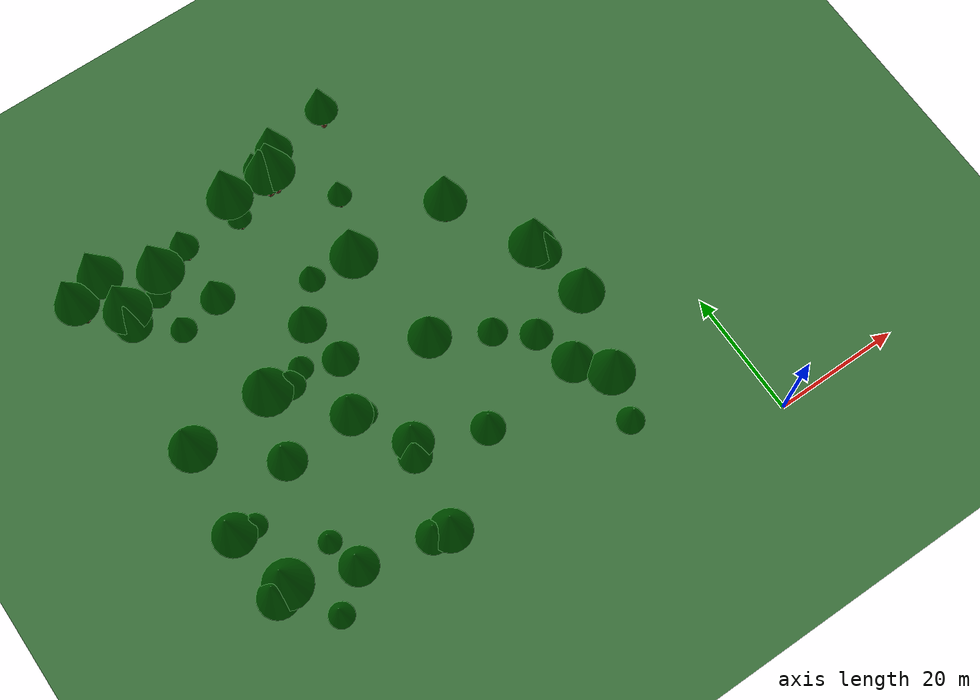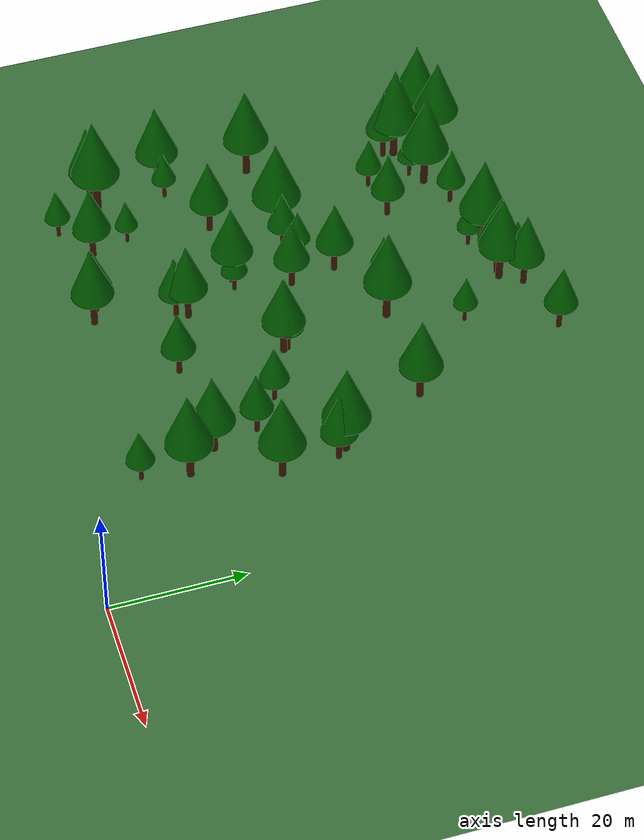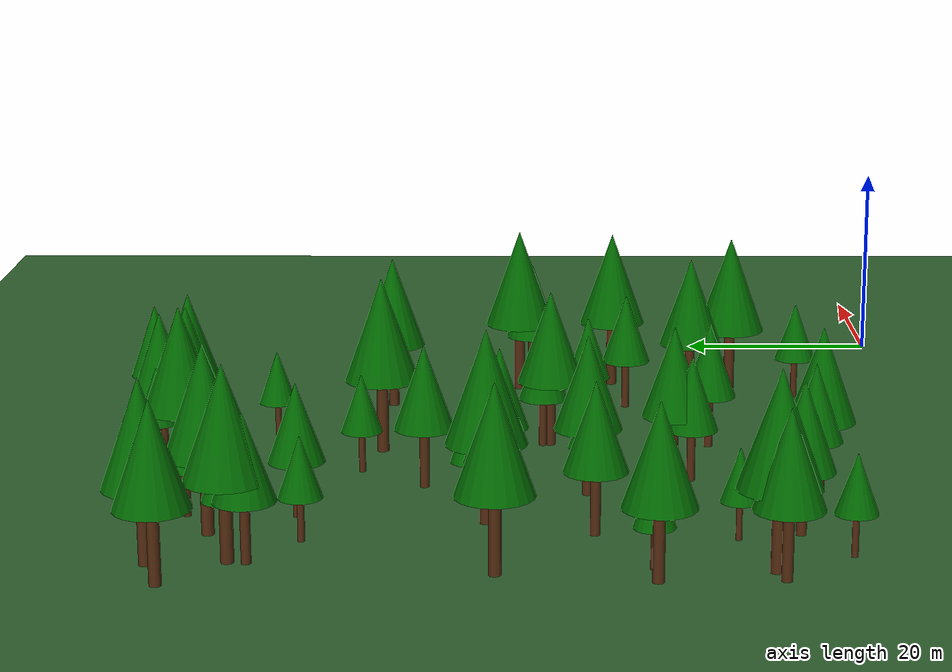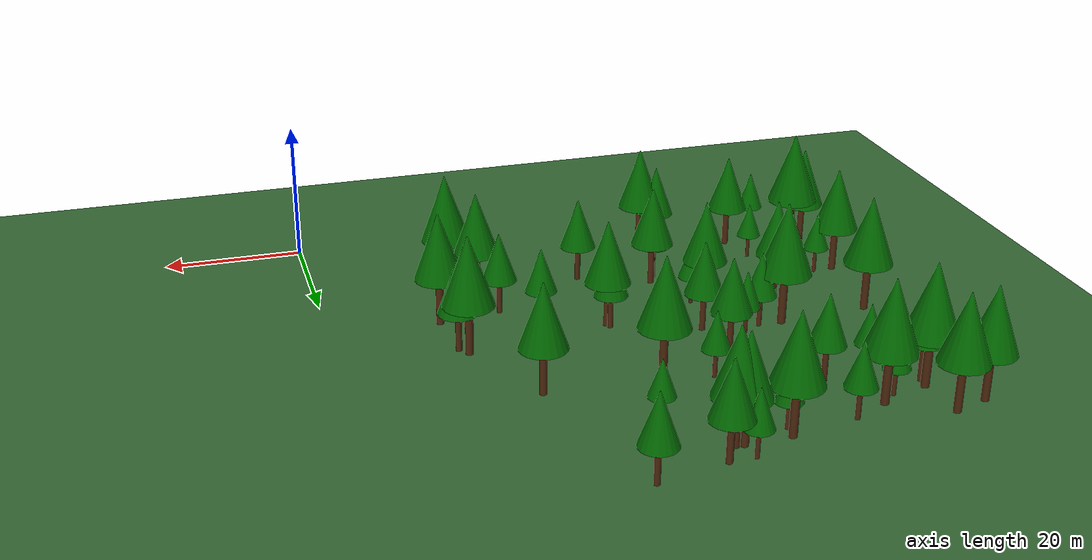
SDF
<sdf version="1.9">
 <world name="Forest_world">
  <model name="ground_plane">
   <static>true</static>
   <link name="link">
    <collision name="collision">
     <geometry><plane><normal>0 0 1</normal><size>500 500</size></plane></geometry>
    </collision>
    <visual name="visual">
     <geometry><plane><normal>0 0 1</normal><size>500 500</size></plane></geometry>
     <material><ambient>0.2 0.4 0.2 1</ambient><diffuse>0.2 0.4 0.2 1</diffuse></material>
    </visual>
   </link>
  </model>
  <model name="tree_8">
   <static>true</static>
   <pose>-43.70 74.55 0 0 0 0</pose>
   <link name="link">
    <collision name="trunk_col">
     <pose>0 0 1.99 0 0 0</pose>
     <geometry><cylinder><radius>0.32</radius><length>3.98</length></cylinder></geometry>
    </collision>
    <visual name="trunk_vis">
     <pose>0 0 1.99 0 0 0</pose>
     <geometry><cylinder><radius>0.32</radius><length>3.98</length></cylinder></geometry>
     <material><ambient>0.3 0.15 0.05 1</ambient><diffuse>0.3 0.15 0.05 1</diffuse></material>
    </visual>
    <collision name="leaves_col">
     <pose>0 0 6.77 0 0 0</pose>
     <geometry><cone><radius>1.99</radius><length>5.57</length></cone></geometry>
    </collision>
    <visual name="leaves_vis">
     <pose>0 0 6.77 0 0 0</pose>
     <geometry><cone><radius>1.99</radius><length>5.57</length></cone></geometry>
     <material><ambient>0.0 0.4 0.0 1</ambient><diffuse>0.0 0.4 0.0 1</diffuse></material>
    </visual>
   </link>
  </model>
  <model name="tree_16">
   <static>true</static>
   <pose>-66.06 58.57 0 0 0 0</pose>
   <link name="link">
    <collision name="trunk_col">
     <pose>0 0 2.02 0 0 0</pose>
     <geometry><cylinder><radius>0.32</radius><length>4.04</length></cylinder></geometry>
    </collision>
    <visual name="trunk_vis">
     <pose>0 0 2.02 0 0 0</pose>
     <geometry><cylinder><radius>0.32</radius><length>4.04</length></cylinder></geometry>
     <material><ambient>0.3 0.15 0.05 1</ambient><diffuse>0.3 0.15 0.05 1</diffuse></material>
    </visual>
    <collision name="leaves_col">
     <pose>0 0 6.87 0 0 0</pose>
     <geometry><cone><radius>2.02</radius><length>5.66</length></cone></geometry>
    </collision>
    <visual name="leaves_vis">
     <pose>0 0 6.87 0 0 0</pose>
     <geometry><cone><radius>2.02</radius><length>5.66</length></cone></geometry>
     <material><ambient>0.0 0.4 0.0 1</ambient><diffuse>0.0 0.4 0.0 1</diffuse></material>
    </visual>
   </link>
  </model>
  <model name="tree_27">
   <static>true</static>
   <pose>-42.20 71.46 0 0 0 0</pose>
   <link name="link">
    <collision name="trunk_col">
     <pose>0 0 3.43 0 0 0</pose>
     <geometry><cylinder><radius>0.55</radius><length>6.86</length></cylinder></geometry>
    </collision>
    <visual name="trunk_vis">
     <pose>0 0 3.43 0 0 0</pose>
     <geometry><cylinder><radius>0.55</radius><length>6.86</length></cylinder></geometry>
     <material><ambient>0.3 0.15 0.05 1</ambient><diffuse>0.3 0.15 0.05 1</diffuse></material>
    </visual>
    <collision name="leaves_col">
     <pose>0 0 11.65 0 0 0</pose>
     <geometry><cone><radius>3.43</radius><length>9.60</length></cone></geometry>
    </collision>
    <visual name="leaves_vis">
     <pose>0 0 11.65 0 0 0</pose>
     <geometry><cone><radius>3.43</radius><length>9.60</length></cone></geometry>
     <material><ambient>0.0 0.4 0.0 1</ambient><diffuse>0.0 0.4 0.0 1</diffuse></material>
    </visual>
   </link>
  </model>
  <model name="tree_30">
   <static>true</static>
   <pose>-73.63 17.61 0 0 0 0</pose>
   <link name="link">
    <collision name="trunk_col">
     <pose>0 0 3.73 0 0 0</pose>
     <geometry><cylinder><radius>0.60</radius><length>7.45</length></cylinder></geometry>
    </collision>
    <visual name="trunk_vis">
     <pose>0 0 3.73 0 0 0</pose>
     <geometry><cylinder><radius>0.60</radius><length>7.45</length></cylinder></geometry>
     <material><ambient>0.3 0.15 0.05 1</ambient><diffuse>0.3 0.15 0.05 1</diffuse></material>
    </visual>
    <collision name="leaves_col">
     <pose>0 0 12.67 0 0 0</pose>
     <geometry><cone><radius>3.73</radius><length>10.44</length></cone></geometry>
    </collision>
    <visual name="leaves_vis">
     <pose>0 0 12.67 0 0 0</pose>
     <geometry><cone><radius>3.73</radius><length>10.44</length></cone></geometry>
     <material><ambient>0.0 0.4 0.0 1</ambient><diffuse>0.0 0.4 0.0 1</diffuse></material>
    </visual>
   </link>
  </model>
  <model name="tree_31">
   <static>true</static>
   <pose>-23.72 52.81 0 0 0 0</pose>
   <link name="link">
    <collision name="trunk_col">
     <pose>0 0 3.29 0 0 0</pose>
     <geometry><cylinder><radius>0.53</radius><length>6.57</length></cylinder></geometry>
    </collision>
    <visual name="trunk_vis">
     <pose>0 0 3.29 0 0 0</pose>
     <geometry><cylinder><radius>0.53</radius><length>6.57</length></cylinder></geometry>
     <material><ambient>0.3 0.15 0.05 1</ambient><diffuse>0.3 0.15 0.05 1</diffuse></material>
    </visual>
    <collision name="leaves_col">
     <pose>0 0 11.18 0 0 0</pose>
     <geometry><cone><radius>3.29</radius><length>9.20</length></cone></geometry>
    </collision>
    <visual name="leaves_vis">
     <pose>0 0 11.18 0 0 0</pose>
     <geometry><cone><radius>3.29</radius><length>9.20</length></cone></geometry>
     <material><ambient>0.0 0.4 0.0 1</ambient><diffuse>0.0 0.4 0.0 1</diffuse></material>
    </visual>
   </link>
  </model>
  <model name="tree_35">
   <static>true</static>
   <pose>-64.30 67.00 0 0 0 0</pose>
   <link name="link">
    <collision name="trunk_col">
     <pose>0 0 3.63 0 0 0</pose>
     <geometry><cylinder><radius>0.58</radius><length>7.26</length></cylinder></geometry>
    </collision>
    <visual name="trunk_vis">
     <pose>0 0 3.63 0 0 0</pose>
     <geometry><cylinder><radius>0.58</radius><length>7.26</length></cylinder></geometry>
     <material><ambient>0.3 0.15 0.05 1</ambient><diffuse>0.3 0.15 0.05 1</diffuse></material>
    </visual>
    <collision name="leaves_col">
     <pose>0 0 12.34 0 0 0</pose>
     <geometry><cone><radius>3.63</radius><length>10.17</length></cone></geometry>
    </collision>
    <visual name="leaves_vis">
     <pose>0 0 12.34 0 0 0</pose>
     <geometry><cone><radius>3.63</radius><length>10.17</length></cone></geometry>
     <material><ambient>0.0 0.4 0.0 1</ambient><diffuse>0.0 0.4 0.0 1</diffuse></material>
    </visual>
   </link>
  </model>
  <model name="tree_36">
   <static>true</static>
   <pose>-19.27 17.14 0 0 0 0</pose>
   <link name="link">
    <collision name="trunk_col">
     <pose>0 0 3.53 0 0 0</pose>
     <geometry><cylinder><radius>0.56</radius><length>7.05</length></cylinder></geometry>
    </collision>
    <visual name="trunk_vis">
     <pose>0 0 3.53 0 0 0</pose>
     <geometry><cylinder><radius>0.56</radius><length>7.05</length></cylinder></geometry>
     <material><ambient>0.3 0.15 0.05 1</ambient><diffuse>0.3 0.15 0.05 1</diffuse></material>
    </visual>
    <collision name="leaves_col">
     <pose>0 0 11.99 0 0 0</pose>
     <geometry><cone><radius>3.53</radius><length>9.87</length></cone></geometry>
    </collision>
    <visual name="leaves_vis">
     <pose>0 0 11.99 0 0 0</pose>
     <geometry><cone><radius>3.53</radius><length>9.87</length></cone></geometry>
     <material><ambient>0.0 0.4 0.0 1</ambient><diffuse>0.0 0.4 0.0 1</diffuse></material>
    </visual>
   </link>
  </model>
  <model name="tree_49">
   <static>true</static>
   <pose>-51.44 32.93 0 0 0 0</pose>
   <link name="link">
    <collision name="trunk_col">
     <pose>0 0 2.03 0 0 0</pose>
     <geometry><cylinder><radius>0.32</radius><length>4.06</length></cylinder></geometry>
    </collision>
    <visual name="trunk_vis">
     <pose>0 0 2.03 0 0 0</pose>
     <geometry><cylinder><radius>0.32</radius><length>4.06</length></cylinder></geometry>
     <material><ambient>0.3 0.15 0.05 1</ambient><diffuse>0.3 0.15 0.05 1</diffuse></material>
    </visual>
    <collision name="leaves_col">
     <pose>0 0 6.90 0 0 0</pose>
     <geometry><cone><radius>2.03</radius><length>5.69</length></cone></geometry>
    </collision>
    <visual name="leaves_vis">
     <pose>0 0 6.90 0 0 0</pose>
     <geometry><cone><radius>2.03</radius><length>5.69</length></cone></geometry>
     <material><ambient>0.0 0.4 0.0 1</ambient><diffuse>0.0 0.4 0.0 1</diffuse></material>
    </visual>
   </link>
  </model>
  <model name="tree_51">
   <static>true</static>
   <pose>-16.15 38.19 0 0 0 0</pose>
   <link name="link">
    <collision name="trunk_col">
     <pose>0 0 2.78 0 0 0</pose>
     <geometry><cylinder><radius>0.45</radius><length>5.56</length></cylinder></geometry>
    </collision>
    <visual name="trunk_vis">
     <pose>0 0 2.78 0 0 0</pose>
     <geometry><cylinder><radius>0.45</radius><length>5.56</length></cylinder></geometry>
     <material><ambient>0.3 0.15 0.05 1</ambient><diffuse>0.3 0.15 0.05 1</diffuse></material>
    </visual>
    <collision name="leaves_col">
     <pose>0 0 9.46 0 0 0</pose>
     <geometry><cone><radius>2.78</radius><length>7.79</length></cone></geometry>
    </collision>
    <visual name="leaves_vis">
     <pose>0 0 9.46 0 0 0</pose>
     <geometry><cone><radius>2.78</radius><length>7.79</length></cone></geometry>
     <material><ambient>0.0 0.4 0.0 1</ambient><diffuse>0.0 0.4 0.0 1</diffuse></material>
    </visual>
   </link>
  </model>
  <model name="tree_60">
   <static>true</static>
   <pose>-35.60 63.74 0 0 0 0</pose>
   <link name="link">
    <collision name="trunk_col">
     <pose>0 0 1.87 0 0 0</pose>
     <geometry><cylinder><radius>0.30</radius><length>3.74</length></cylinder></geometry>
    </collision>
    <visual name="trunk_vis">
     <pose>0 0 1.87 0 0 0</pose>
     <geometry><cylinder><radius>0.30</radius><length>3.74</length></cylinder></geometry>
     <material><ambient>0.3 0.15 0.05 1</ambient><diffuse>0.3 0.15 0.05 1</diffuse></material>
    </visual>
    <collision name="leaves_col">
     <pose>0 0 6.35 0 0 0</pose>
     <geometry><cone><radius>1.87</radius><length>5.23</length></cone></geometry>
    </collision>
    <visual name="leaves_vis">
     <pose>0 0 6.35 0 0 0</pose>
     <geometry><cone><radius>1.87</radius><length>5.23</length></cone></geometry>
     <material><ambient>0.0 0.4 0.0 1</ambient><diffuse>0.0 0.4 0.0 1</diffuse></material>
    </visual>
   </link>
  </model>
  <model name="tree_63">
   <static>true</static>
   <pose>-65.56 20.14 0 0 0 0</pose>
   <link name="link">
    <collision name="trunk_col">
     <pose>0 0 1.77 0 0 0</pose>
     <geometry><cylinder><radius>0.28</radius><length>3.54</length></cylinder></geometry>
    </collision>
    <visual name="trunk_vis">
     <pose>0 0 1.77 0 0 0</pose>
     <geometry><cylinder><radius>0.28</radius><length>3.54</length></cylinder></geometry>
     <material><ambient>0.3 0.15 0.05 1</ambient><diffuse>0.3 0.15 0.05 1</diffuse></material>
    </visual>
    <collision name="leaves_col">
     <pose>0 0 6.01 0 0 0</pose>
     <geometry><cone><radius>1.77</radius><length>4.95</length></cone></geometry>
    </collision>
    <visual name="leaves_vis">
     <pose>0 0 6.01 0 0 0</pose>
     <geometry><cone><radius>1.77</radius><length>4.95</length></cone></geometry>
     <material><ambient>0.0 0.4 0.0 1</ambient><diffuse>0.0 0.4 0.0 1</diffuse></material>
    </visual>
   </link>
  </model>
  <model name="tree_66">
   <static>true</static>
   <pose>-64.21 14.50 0 0 0 0</pose>
   <link name="link">
    <collision name="trunk_col">
     <pose>0 0 2.93 0 0 0</pose>
     <geometry><cylinder><radius>0.47</radius><length>5.86</length></cylinder></geometry>
    </collision>
    <visual name="trunk_vis">
     <pose>0 0 2.93 0 0 0</pose>
     <geometry><cylinder><radius>0.47</radius><length>5.86</length></cylinder></geometry>
     <material><ambient>0.3 0.15 0.05 1</ambient><diffuse>0.3 0.15 0.05 1</diffuse></material>
    </visual>
    <collision name="leaves_col">
     <pose>0 0 9.96 0 0 0</pose>
     <geometry><cone><radius>2.93</radius><length>8.20</length></cone></geometry>
    </collision>
    <visual name="leaves_vis">
     <pose>0 0 9.96 0 0 0</pose>
     <geometry><cone><radius>2.93</radius><length>8.20</length></cone></geometry>
     <material><ambient>0.0 0.4 0.0 1</ambient><diffuse>0.0 0.4 0.0 1</diffuse></material>
    </visual>
   </link>
  </model>
  <model name="tree_67">
   <static>true</static>
   <pose>-48.21 24.89 0 0 0 0</pose>
   <link name="link">
    <collision name="trunk_col">
     <pose>0 0 3.08 0 0 0</pose>
     <geometry><cylinder><radius>0.49</radius><length>6.17</length></cylinder></geometry>
    </collision>
    <visual name="trunk_vis">
     <pose>0 0 3.08 0 0 0</pose>
     <geometry><cylinder><radius>0.49</radius><length>6.17</length></cylinder></geometry>
     <material><ambient>0.3 0.15 0.05 1</ambient><diffuse>0.3 0.15 0.05 1</diffuse></material>
    </visual>
    <collision name="leaves_col">
     <pose>0 0 10.48 0 0 0</pose>
     <geometry><cone><radius>3.08</radius><length>8.63</length></cone></geometry>
    </collision>
    <visual name="leaves_vis">
     <pose>0 0 10.48 0 0 0</pose>
     <geometry><cone><radius>3.08</radius><length>8.63</length></cone></geometry>
     <material><ambient>0.0 0.4 0.0 1</ambient><diffuse>0.0 0.4 0.0 1</diffuse></material>
    </visual>
   </link>
  </model>
  <model name="tree_72">
   <static>true</static>
   <pose>-76.89 69.70 0 0 0 0</pose>
   <link name="link">
    <collision name="trunk_col">
     <pose>0 0 3.36 0 0 0</pose>
     <geometry><cylinder><radius>0.54</radius><length>6.72</length></cylinder></geometry>
    </collision>
    <visual name="trunk_vis">
     <pose>0 0 3.36 0 0 0</pose>
     <geometry><cylinder><radius>0.54</radius><length>6.72</length></cylinder></geometry>
     <material><ambient>0.3 0.15 0.05 1</ambient><diffuse>0.3 0.15 0.05 1</diffuse></material>
    </visual>
    <collision name="leaves_col">
     <pose>0 0 11.42 0 0 0</pose>
     <geometry><cone><radius>3.36</radius><length>9.41</length></cone></geometry>
    </collision>
    <visual name="leaves_vis">
     <pose>0 0 11.42 0 0 0</pose>
     <geometry><cone><radius>3.36</radius><length>9.41</length></cone></geometry>
     <material><ambient>0.0 0.4 0.0 1</ambient><diffuse>0.0 0.4 0.0 1</diffuse></material>
    </visual>
   </link>
  </model>
  <model name="tree_77">
   <static>true</static>
   <pose>-51.03 11.30 0 0 0 0</pose>
   <link name="link">
    <collision name="trunk_col">
     <pose>0 0 3.23 0 0 0</pose>
     <geometry><cylinder><radius>0.52</radius><length>6.47</length></cylinder></geometry>
    </collision>
    <visual name="trunk_vis">
     <pose>0 0 3.23 0 0 0</pose>
     <geometry><cylinder><radius>0.52</radius><length>6.47</length></cylinder></geometry>
     <material><ambient>0.3 0.15 0.05 1</ambient><diffuse>0.3 0.15 0.05 1</diffuse></material>
    </visual>
    <collision name="leaves_col">
     <pose>0 0 11.00 0 0 0</pose>
     <geometry><cone><radius>3.23</radius><length>9.06</length></cone></geometry>
    </collision>
    <visual name="leaves_vis">
     <pose>0 0 11.00 0 0 0</pose>
     <geometry><cone><radius>3.23</radius><length>9.06</length></cone></geometry>
     <material><ambient>0.0 0.4 0.0 1</ambient><diffuse>0.0 0.4 0.0 1</diffuse></material>
    </visual>
   </link>
  </model>
  <model name="tree_81">
   <static>true</static>
   <pose>-46.37 54.57 0 0 0 0</pose>
   <link name="link">
    <collision name="trunk_col">
     <pose>0 0 2.01 0 0 0</pose>
     <geometry><cylinder><radius>0.32</radius><length>4.02</length></cylinder></geometry>
    </collision>
    <visual name="trunk_vis">
     <pose>0 0 2.01 0 0 0</pose>
     <geometry><cylinder><radius>0.32</radius><length>4.02</length></cylinder></geometry>
     <material><ambient>0.3 0.15 0.05 1</ambient><diffuse>0.3 0.15 0.05 1</diffuse></material>
    </visual>
    <collision name="leaves_col">
     <pose>0 0 6.83 0 0 0</pose>
     <geometry><cone><radius>2.01</radius><length>5.63</length></cone></geometry>
    </collision>
    <visual name="leaves_vis">
     <pose>0 0 6.83 0 0 0</pose>
     <geometry><cone><radius>2.01</radius><length>5.63</length></cone></geometry>
     <material><ambient>0.0 0.4 0.0 1</ambient><diffuse>0.0 0.4 0.0 1</diffuse></material>
    </visual>
   </link>
  </model>
  <model name="tree_90">
   <static>true</static>
   <pose>-49.96 69.24 0 0 0 0</pose>
   <link name="link">
    <collision name="trunk_col">
     <pose>0 0 1.88 0 0 0</pose>
     <geometry><cylinder><radius>0.30</radius><length>3.77</length></cylinder></geometry>
    </collision>
    <visual name="trunk_vis">
     <pose>0 0 1.88 0 0 0</pose>
     <geometry><cylinder><radius>0.30</radius><length>3.77</length></cylinder></geometry>
     <material><ambient>0.3 0.15 0.05 1</ambient><diffuse>0.3 0.15 0.05 1</diffuse></material>
    </visual>
    <collision name="leaves_col">
     <pose>0 0 6.41 0 0 0</pose>
     <geometry><cone><radius>1.88</radius><length>5.28</length></cone></geometry>
    </collision>
    <visual name="leaves_vis">
     <pose>0 0 6.41 0 0 0</pose>
     <geometry><cone><radius>1.88</radius><length>5.28</length></cone></geometry>
     <material><ambient>0.0 0.4 0.0 1</ambient><diffuse>0.0 0.4 0.0 1</diffuse></material>
    </visual>
   </link>
  </model>
  <model name="tree_95">
   <static>true</static>
   <pose>-49.83 71.22 0 0 0 0</pose>
   <link name="link">
    <collision name="trunk_col">
     <pose>0 0 3.56 0 0 0</pose>
     <geometry><cylinder><radius>0.57</radius><length>7.13</length></cylinder></geometry>
    </collision>
    <visual name="trunk_vis">
     <pose>0 0 3.56 0 0 0</pose>
     <geometry><cylinder><radius>0.57</radius><length>7.13</length></cylinder></geometry>
     <material><ambient>0.3 0.15 0.05 1</ambient><diffuse>0.3 0.15 0.05 1</diffuse></material>
    </visual>
    <collision name="leaves_col">
     <pose>0 0 12.12 0 0 0</pose>
     <geometry><cone><radius>3.56</radius><length>9.98</length></cone></geometry>
    </collision>
    <visual name="leaves_vis">
     <pose>0 0 12.12 0 0 0</pose>
     <geometry><cone><radius>3.56</radius><length>9.98</length></cone></geometry>
     <material><ambient>0.0 0.4 0.0 1</ambient><diffuse>0.0 0.4 0.0 1</diffuse></material>
    </visual>
   </link>
  </model>
  <model name="tree_104">
   <static>true</static>
   <pose>-22.71 21.62 0 0 0 0</pose>
   <link name="link">
    <collision name="trunk_col">
     <pose>0 0 3.22 0 0 0</pose>
     <geometry><cylinder><radius>0.52</radius><length>6.45</length></cylinder></geometry>
    </collision>
    <visual name="trunk_vis">
     <pose>0 0 3.22 0 0 0</pose>
     <geometry><cylinder><radius>0.52</radius><length>6.45</length></cylinder></geometry>
     <material><ambient>0.3 0.15 0.05 1</ambient><diffuse>0.3 0.15 0.05 1</diffuse></material>
    </visual>
    <collision name="leaves_col">
     <pose>0 0 10.96 0 0 0</pose>
     <geometry><cone><radius>3.22</radius><length>9.03</length></cone></geometry>
    </collision>
    <visual name="leaves_vis">
     <pose>0 0 10.96 0 0 0</pose>
     <geometry><cone><radius>3.22</radius><length>9.03</length></cone></geometry>
     <material><ambient>0.0 0.4 0.0 1</ambient><diffuse>0.0 0.4 0.0 1</diffuse></material>
    </visual>
   </link>
  </model>
  <model name="tree_106">
   <static>true</static>
   <pose>-38.20 20.75 0 0 0 0</pose>
   <link name="link">
    <collision name="trunk_col">
     <pose>0 0 2.60 0 0 0</pose>
     <geometry><cylinder><radius>0.42</radius><length>5.21</length></cylinder></geometry>
    </collision>
    <visual name="trunk_vis">
     <pose>0 0 2.60 0 0 0</pose>
     <geometry><cylinder><radius>0.42</radius><length>5.21</length></cylinder></geometry>
     <material><ambient>0.3 0.15 0.05 1</ambient><diffuse>0.3 0.15 0.05 1</diffuse></material>
    </visual>
    <collision name="leaves_col">
     <pose>0 0 8.85 0 0 0</pose>
     <geometry><cone><radius>2.60</radius><length>7.29</length></cone></geometry>
    </collision>
    <visual name="leaves_vis">
     <pose>0 0 8.85 0 0 0</pose>
     <geometry><cone><radius>2.60</radius><length>7.29</length></cone></geometry>
     <material><ambient>0.0 0.4 0.0 1</ambient><diffuse>0.0 0.4 0.0 1</diffuse></material>
    </visual>
   </link>
  </model>
  <model name="tree_112">
   <static>true</static>
   <pose>-71.37 64.39 0 0 0 0</pose>
   <link name="link">
    <collision name="trunk_col">
     <pose>0 0 3.66 0 0 0</pose>
     <geometry><cylinder><radius>0.59</radius><length>7.32</length></cylinder></geometry>
    </collision>
    <visual name="trunk_vis">
     <pose>0 0 3.66 0 0 0</pose>
     <geometry><cylinder><radius>0.59</radius><length>7.32</length></cylinder></geometry>
     <material><ambient>0.3 0.15 0.05 1</ambient><diffuse>0.3 0.15 0.05 1</diffuse></material>
    </visual>
    <collision name="leaves_col">
     <pose>0 0 12.45 0 0 0</pose>
     <geometry><cone><radius>3.66</radius><length>10.25</length></cone></geometry>
    </collision>
    <visual name="leaves_vis">
     <pose>0 0 12.45 0 0 0</pose>
     <geometry><cone><radius>3.66</radius><length>10.25</length></cone></geometry>
     <material><ambient>0.0 0.4 0.0 1</ambient><diffuse>0.0 0.4 0.0 1</diffuse></material>
    </visual>
   </link>
  </model>
  <model name="tree_114">
   <static>true</static>
   <pose>-72.98 28.01 0 0 0 0</pose>
   <link name="link">
    <collision name="trunk_col">
     <pose>0 0 1.89 0 0 0</pose>
     <geometry><cylinder><radius>0.30</radius><length>3.78</length></cylinder></geometry>
    </collision>
    <visual name="trunk_vis">
     <pose>0 0 1.89 0 0 0</pose>
     <geometry><cylinder><radius>0.30</radius><length>3.78</length></cylinder></geometry>
     <material><ambient>0.3 0.15 0.05 1</ambient><diffuse>0.3 0.15 0.05 1</diffuse></material>
    </visual>
    <collision name="leaves_col">
     <pose>0 0 6.43 0 0 0</pose>
     <geometry><cone><radius>1.89</radius><length>5.29</length></cone></geometry>
    </collision>
    <visual name="leaves_vis">
     <pose>0 0 6.43 0 0 0</pose>
     <geometry><cone><radius>1.89</radius><length>5.29</length></cone></geometry>
     <material><ambient>0.0 0.4 0.0 1</ambient><diffuse>0.0 0.4 0.0 1</diffuse></material>
    </visual>
   </link>
  </model>
  <model name="tree_118">
   <static>true</static>
   <pose>-64.31 32.74 0 0 0 0</pose>
   <link name="link">
    <collision name="trunk_col">
     <pose>0 0 2.94 0 0 0</pose>
     <geometry><cylinder><radius>0.47</radius><length>5.88</length></cylinder></geometry>
    </collision>
    <visual name="trunk_vis">
     <pose>0 0 2.94 0 0 0</pose>
     <geometry><cylinder><radius>0.47</radius><length>5.88</length></cylinder></geometry>
     <material><ambient>0.3 0.15 0.05 1</ambient><diffuse>0.3 0.15 0.05 1</diffuse></material>
    </visual>
    <collision name="leaves_col">
     <pose>0 0 10.00 0 0 0</pose>
     <geometry><cone><radius>2.94</radius><length>8.24</length></cone></geometry>
    </collision>
    <visual name="leaves_vis">
     <pose>0 0 10.00 0 0 0</pose>
     <geometry><cone><radius>2.94</radius><length>8.24</length></cone></geometry>
     <material><ambient>0.0 0.4 0.0 1</ambient><diffuse>0.0 0.4 0.0 1</diffuse></material>
    </visual>
   </link>
  </model>
  <model name="tree_128">
   <static>true</static>
   <pose>-59.28 69.54 0 0 0 0</pose>
   <link name="link">
    <collision name="trunk_col">
     <pose>0 0 2.23 0 0 0</pose>
     <geometry><cylinder><radius>0.36</radius><length>4.47</length></cylinder></geometry>
    </collision>
    <visual name="trunk_vis">
     <pose>0 0 2.23 0 0 0</pose>
     <geometry><cylinder><radius>0.36</radius><length>4.47</length></cylinder></geometry>
     <material><ambient>0.3 0.15 0.05 1</ambient><diffuse>0.3 0.15 0.05 1</diffuse></material>
    </visual>
    <collision name="leaves_col">
     <pose>0 0 7.60 0 0 0</pose>
     <geometry><cone><radius>2.23</radius><length>6.26</length></cone></geometry>
    </collision>
    <visual name="leaves_vis">
     <pose>0 0 7.60 0 0 0</pose>
     <geometry><cone><radius>2.23</radius><length>6.26</length></cone></geometry>
     <material><ambient>0.0 0.4 0.0 1</ambient><diffuse>0.0 0.4 0.0 1</diffuse></material>
    </visual>
   </link>
  </model>
  <model name="tree_130">
   <static>true</static>
   <pose>-59.50 59.50 0 0 0 0</pose>
   <link name="link">
    <collision name="trunk_col">
     <pose>0 0 2.61 0 0 0</pose>
     <geometry><cylinder><radius>0.42</radius><length>5.23</length></cylinder></geometry>
    </collision>
    <visual name="trunk_vis">
     <pose>0 0 2.61 0 0 0</pose>
     <geometry><cylinder><radius>0.42</radius><length>5.23</length></cylinder></geometry>
     <material><ambient>0.3 0.15 0.05 1</ambient><diffuse>0.3 0.15 0.05 1</diffuse></material>
    </visual>
    <collision name="leaves_col">
     <pose>0 0 8.88 0 0 0</pose>
     <geometry><cone><radius>2.61</radius><length>7.32</length></cone></geometry>
    </collision>
    <visual name="leaves_vis">
     <pose>0 0 8.88 0 0 0</pose>
     <geometry><cone><radius>2.61</radius><length>7.32</length></cone></geometry>
     <material><ambient>0.0 0.4 0.0 1</ambient><diffuse>0.0 0.4 0.0 1</diffuse></material>
    </visual>
   </link>
  </model>
  <model name="tree_133">
   <static>true</static>
   <pose>-53.18 33.13 0 0 0 0</pose>
   <link name="link">
    <collision name="trunk_col">
     <pose>0 0 3.19 0 0 0</pose>
     <geometry><cylinder><radius>0.51</radius><length>6.37</length></cylinder></geometry>
    </collision>
    <visual name="trunk_vis">
     <pose>0 0 3.19 0 0 0</pose>
     <geometry><cylinder><radius>0.51</radius><length>6.37</length></cylinder></geometry>
     <material><ambient>0.3 0.15 0.05 1</ambient><diffuse>0.3 0.15 0.05 1</diffuse></material>
    </visual>
    <collision name="leaves_col">
     <pose>0 0 10.84 0 0 0</pose>
     <geometry><cone><radius>3.19</radius><length>8.92</length></cone></geometry>
    </collision>
    <visual name="leaves_vis">
     <pose>0 0 10.84 0 0 0</pose>
     <geometry><cone><radius>3.19</radius><length>8.92</length></cone></geometry>
     <material><ambient>0.0 0.4 0.0 1</ambient><diffuse>0.0 0.4 0.0 1</diffuse></material>
    </visual>
   </link>
  </model>
  <model name="tree_140">
   <static>true</static>
   <pose>-61.23 42.40 0 0 0 0</pose>
   <link name="link">
    <collision name="trunk_col">
     <pose>0 0 3.74 0 0 0</pose>
     <geometry><cylinder><radius>0.60</radius><length>7.48</length></cylinder></geometry>
    </collision>
    <visual name="trunk_vis">
     <pose>0 0 3.74 0 0 0</pose>
     <geometry><cylinder><radius>0.60</radius><length>7.48</length></cylinder></geometry>
     <material><ambient>0.3 0.15 0.05 1</ambient><diffuse>0.3 0.15 0.05 1</diffuse></material>
    </visual>
    <collision name="leaves_col">
     <pose>0 0 12.71 0 0 0</pose>
     <geometry><cone><radius>3.74</radius><length>10.47</length></cone></geometry>
    </collision>
    <visual name="leaves_vis">
     <pose>0 0 12.71 0 0 0</pose>
     <geometry><cone><radius>3.74</radius><length>10.47</length></cone></geometry>
     <material><ambient>0.0 0.4 0.0 1</ambient><diffuse>0.0 0.4 0.0 1</diffuse></material>
    </visual>
   </link>
  </model>
  <model name="tree_143">
   <static>true</static>
   <pose>-20.61 10.31 0 0 0 0</pose>
   <link name="link">
    <collision name="trunk_col">
     <pose>0 0 2.12 0 0 0</pose>
     <geometry><cylinder><radius>0.34</radius><length>4.23</length></cylinder></geometry>
    </collision>
    <visual name="trunk_vis">
     <pose>0 0 2.12 0 0 0</pose>
     <geometry><cylinder><radius>0.34</radius><length>4.23</length></cylinder></geometry>
     <material><ambient>0.3 0.15 0.05 1</ambient><diffuse>0.3 0.15 0.05 1</diffuse></material>
    </visual>
    <collision name="leaves_col">
     <pose>0 0 7.19 0 0 0</pose>
     <geometry><cone><radius>2.12</radius><length>5.92</length></cone></geometry>
    </collision>
    <visual name="leaves_vis">
     <pose>0 0 7.19 0 0 0</pose>
     <geometry><cone><radius>2.12</radius><length>5.92</length></cone></geometry>
     <material><ambient>0.0 0.4 0.0 1</ambient><diffuse>0.0 0.4 0.0 1</diffuse></material>
    </visual>
   </link>
  </model>
  <model name="tree_148">
   <static>true</static>
   <pose>-17.28 39.56 0 0 0 0</pose>
   <link name="link">
    <collision name="trunk_col">
     <pose>0 0 3.59 0 0 0</pose>
     <geometry><cylinder><radius>0.57</radius><length>7.18</length></cylinder></geometry>
    </collision>
    <visual name="trunk_vis">
     <pose>0 0 3.59 0 0 0</pose>
     <geometry><cylinder><radius>0.57</radius><length>7.18</length></cylinder></geometry>
     <material><ambient>0.3 0.15 0.05 1</ambient><diffuse>0.3 0.15 0.05 1</diffuse></material>
    </visual>
    <collision name="leaves_col">
     <pose>0 0 12.21 0 0 0</pose>
     <geometry><cone><radius>3.59</radius><length>10.06</length></cone></geometry>
    </collision>
    <visual name="leaves_vis">
     <pose>0 0 12.21 0 0 0</pose>
     <geometry><cone><radius>3.59</radius><length>10.06</length></cone></geometry>
     <material><ambient>0.0 0.4 0.0 1</ambient><diffuse>0.0 0.4 0.0 1</diffuse></material>
    </visual>
   </link>
  </model>
  <model name="tree_153">
   <static>true</static>
   <pose>-30.40 76.67 0 0 0 0</pose>
   <link name="link">
    <collision name="trunk_col">
     <pose>0 0 2.57 0 0 0</pose>
     <geometry><cylinder><radius>0.41</radius><length>5.15</length></cylinder></geometry>
    </collision>
    <visual name="trunk_vis">
     <pose>0 0 2.57 0 0 0</pose>
     <geometry><cylinder><radius>0.41</radius><length>5.15</length></cylinder></geometry>
     <material><ambient>0.3 0.15 0.05 1</ambient><diffuse>0.3 0.15 0.05 1</diffuse></material>
    </visual>
    <collision name="leaves_col">
     <pose>0 0 8.75 0 0 0</pose>
     <geometry><cone><radius>2.57</radius><length>7.21</length></cone></geometry>
    </collision>
    <visual name="leaves_vis">
     <pose>0 0 8.75 0 0 0</pose>
     <geometry><cone><radius>2.57</radius><length>7.21</length></cone></geometry>
     <material><ambient>0.0 0.4 0.0 1</ambient><diffuse>0.0 0.4 0.0 1</diffuse></material>
    </visual>
   </link>
  </model>
  <model name="tree_156">
   <static>true</static>
   <pose>-66.42 65.31 0 0 0 0</pose>
   <link name="link">
    <collision name="trunk_col">
     <pose>0 0 1.93 0 0 0</pose>
     <geometry><cylinder><radius>0.31</radius><length>3.85</length></cylinder></geometry>
    </collision>
    <visual name="trunk_vis">
     <pose>0 0 1.93 0 0 0</pose>
     <geometry><cylinder><radius>0.31</radius><length>3.85</length></cylinder></geometry>
     <material><ambient>0.3 0.15 0.05 1</ambient><diffuse>0.3 0.15 0.05 1</diffuse></material>
    </visual>
    <collision name="leaves_col">
     <pose>0 0 6.55 0 0 0</pose>
     <geometry><cone><radius>1.93</radius><length>5.40</length></cone></geometry>
    </collision>
    <visual name="leaves_vis">
     <pose>0 0 6.55 0 0 0</pose>
     <geometry><cone><radius>1.93</radius><length>5.40</length></cone></geometry>
     <material><ambient>0.0 0.4 0.0 1</ambient><diffuse>0.0 0.4 0.0 1</diffuse></material>
    </visual>
   </link>
  </model>
  <model name="tree_157">
   <static>true</static>
   <pose>-49.83 41.35 0 0 0 0</pose>
   <link name="link">
    <collision name="trunk_col">
     <pose>0 0 2.75 0 0 0</pose>
     <geometry><cylinder><radius>0.44</radius><length>5.50</length></cylinder></geometry>
    </collision>
    <visual name="trunk_vis">
     <pose>0 0 2.75 0 0 0</pose>
     <geometry><cylinder><radius>0.44</radius><length>5.50</length></cylinder></geometry>
     <material><ambient>0.3 0.15 0.05 1</ambient><diffuse>0.3 0.15 0.05 1</diffuse></material>
    </visual>
    <collision name="leaves_col">
     <pose>0 0 9.35 0 0 0</pose>
     <geometry><cone><radius>2.75</radius><length>7.70</length></cone></geometry>
    </collision>
    <visual name="leaves_vis">
     <pose>0 0 9.35 0 0 0</pose>
     <geometry><cone><radius>2.75</radius><length>7.70</length></cone></geometry>
     <material><ambient>0.0 0.4 0.0 1</ambient><diffuse>0.0 0.4 0.0 1</diffuse></material>
    </visual>
   </link>
  </model>
  <model name="tree_162">
   <static>true</static>
   <pose>-37.60 36.45 0 0 0 0</pose>
   <link name="link">
    <collision name="trunk_col">
     <pose>0 0 3.25 0 0 0</pose>
     <geometry><cylinder><radius>0.52</radius><length>6.50</length></cylinder></geometry>
    </collision>
    <visual name="trunk_vis">
     <pose>0 0 3.25 0 0 0</pose>
     <geometry><cylinder><radius>0.52</radius><length>6.50</length></cylinder></geometry>
     <material><ambient>0.3 0.15 0.05 1</ambient><diffuse>0.3 0.15 0.05 1</diffuse></material>
    </visual>
    <collision name="leaves_col">
     <pose>0 0 11.05 0 0 0</pose>
     <geometry><cone><radius>3.25</radius><length>9.10</length></cone></geometry>
    </collision>
    <visual name="leaves_vis">
     <pose>0 0 11.05 0 0 0</pose>
     <geometry><cone><radius>3.25</radius><length>9.10</length></cone></geometry>
     <material><ambient>0.0 0.4 0.0 1</ambient><diffuse>0.0 0.4 0.0 1</diffuse></material>
    </visual>
   </link>
  </model>
  <model name="tree_163">
   <static>true</static>
   <pose>-57.86 42.35 0 0 0 0</pose>
   <link name="link">
    <collision name="trunk_col">
     <pose>0 0 2.29 0 0 0</pose>
     <geometry><cylinder><radius>0.37</radius><length>4.57</length></cylinder></geometry>
    </collision>
    <visual name="trunk_vis">
     <pose>0 0 2.29 0 0 0</pose>
     <geometry><cylinder><radius>0.37</radius><length>4.57</length></cylinder></geometry>
     <material><ambient>0.3 0.15 0.05 1</ambient><diffuse>0.3 0.15 0.05 1</diffuse></material>
    </visual>
    <collision name="leaves_col">
     <pose>0 0 7.77 0 0 0</pose>
     <geometry><cone><radius>2.29</radius><length>6.40</length></cone></geometry>
    </collision>
    <visual name="leaves_vis">
     <pose>0 0 7.77 0 0 0</pose>
     <geometry><cone><radius>2.29</radius><length>6.40</length></cone></geometry>
     <material><ambient>0.0 0.4 0.0 1</ambient><diffuse>0.0 0.4 0.0 1</diffuse></material>
    </visual>
   </link>
  </model>
  <model name="tree_173">
   <static>true</static>
   <pose>-29.23 32.51 0 0 0 0</pose>
   <link name="link">
    <collision name="trunk_col">
     <pose>0 0 2.26 0 0 0</pose>
     <geometry><cylinder><radius>0.36</radius><length>4.52</length></cylinder></geometry>
    </collision>
    <visual name="trunk_vis">
     <pose>0 0 2.26 0 0 0</pose>
     <geometry><cylinder><radius>0.36</radius><length>4.52</length></cylinder></geometry>
     <material><ambient>0.3 0.15 0.05 1</ambient><diffuse>0.3 0.15 0.05 1</diffuse></material>
    </visual>
    <collision name="leaves_col">
     <pose>0 0 7.68 0 0 0</pose>
     <geometry><cone><radius>2.26</radius><length>6.33</length></cone></geometry>
    </collision>
    <visual name="leaves_vis">
     <pose>0 0 7.68 0 0 0</pose>
     <geometry><cone><radius>2.26</radius><length>6.33</length></cone></geometry>
     <material><ambient>0.0 0.4 0.0 1</ambient><diffuse>0.0 0.4 0.0 1</diffuse></material>
    </visual>
   </link>
  </model>
  <model name="tree_178">
   <static>true</static>
   <pose>-37.87 37.18 0 0 0 0</pose>
   <link name="link">
    <collision name="trunk_col">
     <pose>0 0 2.42 0 0 0</pose>
     <geometry><cylinder><radius>0.39</radius><length>4.84</length></cylinder></geometry>
    </collision>
    <visual name="trunk_vis">
     <pose>0 0 2.42 0 0 0</pose>
     <geometry><cylinder><radius>0.39</radius><length>4.84</length></cylinder></geometry>
     <material><ambient>0.3 0.15 0.05 1</ambient><diffuse>0.3 0.15 0.05 1</diffuse></material>
    </visual>
    <collision name="leaves_col">
     <pose>0 0 8.22 0 0 0</pose>
     <geometry><cone><radius>2.42</radius><length>6.77</length></cone></geometry>
    </collision>
    <visual name="leaves_vis">
     <pose>0 0 8.22 0 0 0</pose>
     <geometry><cone><radius>2.42</radius><length>6.77</length></cone></geometry>
     <material><ambient>0.0 0.4 0.0 1</ambient><diffuse>0.0 0.4 0.0 1</diffuse></material>
    </visual>
   </link>
  </model>
  <model name="tree_185">
   <static>true</static>
   <pose>-71.65 62.75 0 0 0 0</pose>
   <link name="link">
    <collision name="trunk_col">
     <pose>0 0 2.80 0 0 0</pose>
     <geometry><cylinder><radius>0.45</radius><length>5.59</length></cylinder></geometry>
    </collision>
    <visual name="trunk_vis">
     <pose>0 0 2.80 0 0 0</pose>
     <geometry><cylinder><radius>0.45</radius><length>5.59</length></cylinder></geometry>
     <material><ambient>0.3 0.15 0.05 1</ambient><diffuse>0.3 0.15 0.05 1</diffuse></material>
    </visual>
    <collision name="leaves_col">
     <pose>0 0 9.51 0 0 0</pose>
     <geometry><cone><radius>2.80</radius><length>7.83</length></cone></geometry>
    </collision>
    <visual name="leaves_vis">
     <pose>0 0 9.51 0 0 0</pose>
     <geometry><cone><radius>2.80</radius><length>7.83</length></cone></geometry>
     <material><ambient>0.0 0.4 0.0 1</ambient><diffuse>0.0 0.4 0.0 1</diffuse></material>
    </visual>
   </link>
  </model>
  <model name="tree_186">
   <static>true</static>
   <pose>-39.78 52.98 0 0 0 0</pose>
   <link name="link">
    <collision name="trunk_col">
     <pose>0 0 3.63 0 0 0</pose>
     <geometry><cylinder><radius>0.58</radius><length>7.27</length></cylinder></geometry>
    </collision>
    <visual name="trunk_vis">
     <pose>0 0 3.63 0 0 0</pose>
     <geometry><cylinder><radius>0.58</radius><length>7.27</length></cylinder></geometry>
     <material><ambient>0.3 0.15 0.05 1</ambient><diffuse>0.3 0.15 0.05 1</diffuse></material>
    </visual>
    <collision name="leaves_col">
     <pose>0 0 12.36 0 0 0</pose>
     <geometry><cone><radius>3.63</radius><length>10.18</length></cone></geometry>
    </collision>
    <visual name="leaves_vis">
     <pose>0 0 12.36 0 0 0</pose>
     <geometry><cone><radius>3.63</radius><length>10.18</length></cone></geometry>
     <material><ambient>0.0 0.4 0.0 1</ambient><diffuse>0.0 0.4 0.0 1</diffuse></material>
    </visual>
   </link>
  </model>
  <model name="tree_195">
   <static>true</static>
   <pose>-40.16 74.61 0 0 0 0</pose>
   <link name="link">
    <collision name="trunk_col">
     <pose>0 0 2.92 0 0 0</pose>
     <geometry><cylinder><radius>0.47</radius><length>5.85</length></cylinder></geometry>
    </collision>
    <visual name="trunk_vis">
     <pose>0 0 2.92 0 0 0</pose>
     <geometry><cylinder><radius>0.47</radius><length>5.85</length></cylinder></geometry>
     <material><ambient>0.3 0.15 0.05 1</ambient><diffuse>0.3 0.15 0.05 1</diffuse></material>
    </visual>
    <collision name="leaves_col">
     <pose>0 0 9.94 0 0 0</pose>
     <geometry><cone><radius>2.92</radius><length>8.19</length></cone></geometry>
    </collision>
    <visual name="leaves_vis">
     <pose>0 0 9.94 0 0 0</pose>
     <geometry><cone><radius>2.92</radius><length>8.19</length></cone></geometry>
     <material><ambient>0.0 0.4 0.0 1</ambient><diffuse>0.0 0.4 0.0 1</diffuse></material>
    </visual>
   </link>
  </model>
  <model name="tree_196">
   <static>true</static>
   <pose>-74.35 41.47 0 0 0 0</pose>
   <link name="link">
    <collision name="trunk_col">
     <pose>0 0 3.52 0 0 0</pose>
     <geometry><cylinder><radius>0.56</radius><length>7.04</length></cylinder></geometry>
    </collision>
    <visual name="trunk_vis">
     <pose>0 0 3.52 0 0 0</pose>
     <geometry><cylinder><radius>0.56</radius><length>7.04</length></cylinder></geometry>
     <material><ambient>0.3 0.15 0.05 1</ambient><diffuse>0.3 0.15 0.05 1</diffuse></material>
    </visual>
    <collision name="leaves_col">
     <pose>0 0 11.97 0 0 0</pose>
     <geometry><cone><radius>3.52</radius><length>9.86</length></cone></geometry>
    </collision>
    <visual name="leaves_vis">
     <pose>0 0 11.97 0 0 0</pose>
     <geometry><cone><radius>3.52</radius><length>9.86</length></cone></geometry>
     <material><ambient>0.0 0.4 0.0 1</ambient><diffuse>0.0 0.4 0.0 1</diffuse></material>
    </visual>
   </link>
  </model>
  <model name="tree_198">
   <static>true</static>
   <pose>-50.97 48.38 0 0 0 0</pose>
   <link name="link">
    <collision name="trunk_col">
     <pose>0 0 2.86 0 0 0</pose>
     <geometry><cylinder><radius>0.46</radius><length>5.71</length></cylinder></geometry>
    </collision>
    <visual name="trunk_vis">
     <pose>0 0 2.86 0 0 0</pose>
     <geometry><cylinder><radius>0.46</radius><length>5.71</length></cylinder></geometry>
     <material><ambient>0.3 0.15 0.05 1</ambient><diffuse>0.3 0.15 0.05 1</diffuse></material>
    </visual>
    <collision name="leaves_col">
     <pose>0 0 9.72 0 0 0</pose>
     <geometry><cone><radius>2.86</radius><length>8.00</length></cone></geometry>
    </collision>
    <visual name="leaves_vis">
     <pose>0 0 9.72 0 0 0</pose>
     <geometry><cone><radius>2.86</radius><length>8.00</length></cone></geometry>
     <material><ambient>0.0 0.4 0.0 1</ambient><diffuse>0.0 0.4 0.0 1</diffuse></material>
    </visual>
   </link>
  </model>
  <model name="tree_199">
   <static>true</static>
   <pose>-69.80 10.53 0 0 0 0</pose>
   <link name="link">
    <collision name="trunk_col">
     <pose>0 0 1.95 0 0 0</pose>
     <geometry><cylinder><radius>0.31</radius><length>3.90</length></cylinder></geometry>
    </collision>
    <visual name="trunk_vis">
     <pose>0 0 1.95 0 0 0</pose>
     <geometry><cylinder><radius>0.31</radius><length>3.90</length></cylinder></geometry>
     <material><ambient>0.3 0.15 0.05 1</ambient><diffuse>0.3 0.15 0.05 1</diffuse></material>
    </visual>
    <collision name="leaves_col">
     <pose>0 0 6.63 0 0 0</pose>
     <geometry><cone><radius>1.95</radius><length>5.46</length></cone></geometry>
    </collision>
    <visual name="leaves_vis">
     <pose>0 0 6.63 0 0 0</pose>
     <geometry><cone><radius>1.95</radius><length>5.46</length></cone></geometry>
     <material><ambient>0.0 0.4 0.0 1</ambient><diffuse>0.0 0.4 0.0 1</diffuse></material>
    </visual>
   </link>
  </model>
  <model name="tree_205">
   <static>true</static>
   <pose>-49.04 23.25 0 0 0 0</pose>
   <link name="link">
    <collision name="trunk_col">
     <pose>0 0 2.52 0 0 0</pose>
     <geometry><cylinder><radius>0.40</radius><length>5.03</length></cylinder></geometry>
    </collision>
    <visual name="trunk_vis">
     <pose>0 0 2.52 0 0 0</pose>
     <geometry><cylinder><radius>0.40</radius><length>5.03</length></cylinder></geometry>
     <material><ambient>0.3 0.15 0.05 1</ambient><diffuse>0.3 0.15 0.05 1</diffuse></material>
    </visual>
    <collision name="leaves_col">
     <pose>0 0 8.55 0 0 0</pose>
     <geometry><cone><radius>2.52</radius><length>7.04</length></cone></geometry>
    </collision>
    <visual name="leaves_vis">
     <pose>0 0 8.55 0 0 0</pose>
     <geometry><cone><radius>2.52</radius><length>7.04</length></cone></geometry>
     <material><ambient>0.0 0.4 0.0 1</ambient><diffuse>0.0 0.4 0.0 1</diffuse></material>
    </visual>
   </link>
  </model>
  <model name="tree_207">
   <static>true</static>
   <pose>-43.38 71.55 0 0 0 0</pose>
   <link name="link">
    <collision name="trunk_col">
     <pose>0 0 3.24 0 0 0</pose>
     <geometry><cylinder><radius>0.52</radius><length>6.48</length></cylinder></geometry>
    </collision>
    <visual name="trunk_vis">
     <pose>0 0 3.24 0 0 0</pose>
     <geometry><cylinder><radius>0.52</radius><length>6.48</length></cylinder></geometry>
     <material><ambient>0.3 0.15 0.05 1</ambient><diffuse>0.3 0.15 0.05 1</diffuse></material>
    </visual>
    <collision name="leaves_col">
     <pose>0 0 11.02 0 0 0</pose>
     <geometry><cone><radius>3.24</radius><length>9.08</length></cone></geometry>
    </collision>
    <visual name="leaves_vis">
     <pose>0 0 11.02 0 0 0</pose>
     <geometry><cone><radius>3.24</radius><length>9.08</length></cone></geometry>
     <material><ambient>0.0 0.4 0.0 1</ambient><diffuse>0.0 0.4 0.0 1</diffuse></material>
    </visual>
   </link>
  </model>
  <model name="tree_208">
   <static>true</static>
   <pose>-76.01 27.79 0 0 0 0</pose>
   <link name="link">
    <collision name="trunk_col">
     <pose>0 0 3.29 0 0 0</pose>
     <geometry><cylinder><radius>0.53</radius><length>6.58</length></cylinder></geometry>
    </collision>
    <visual name="trunk_vis">
     <pose>0 0 3.29 0 0 0</pose>
     <geometry><cylinder><radius>0.53</radius><length>6.58</length></cylinder></geometry>
     <material><ambient>0.3 0.15 0.05 1</ambient><diffuse>0.3 0.15 0.05 1</diffuse></material>
    </visual>
    <collision name="leaves_col">
     <pose>0 0 11.18 0 0 0</pose>
     <geometry><cone><radius>3.29</radius><length>9.21</length></cone></geometry>
    </collision>
    <visual name="leaves_vis">
     <pose>0 0 11.18 0 0 0</pose>
     <geometry><cone><radius>3.29</radius><length>9.21</length></cone></geometry>
     <material><ambient>0.0 0.4 0.0 1</ambient><diffuse>0.0 0.4 0.0 1</diffuse></material>
    </visual>
   </link>
  </model>
  <model name="tree_209">
   <static>true</static>
   <pose>-24.32 28.44 0 0 0 0</pose>
   <link name="link">
    <collision name="trunk_col">
     <pose>0 0 2.49 0 0 0</pose>
     <geometry><cylinder><radius>0.40</radius><length>4.99</length></cylinder></geometry>
    </collision>
    <visual name="trunk_vis">
     <pose>0 0 2.49 0 0 0</pose>
     <geometry><cylinder><radius>0.40</radius><length>4.99</length></cylinder></geometry>
     <material><ambient>0.3 0.15 0.05 1</ambient><diffuse>0.3 0.15 0.05 1</diffuse></material>
    </visual>
    <collision name="leaves_col">
     <pose>0 0 8.48 0 0 0</pose>
     <geometry><cone><radius>2.49</radius><length>6.98</length></cone></geometry>
    </collision>
    <visual name="leaves_vis">
     <pose>0 0 8.48 0 0 0</pose>
     <geometry><cone><radius>2.49</radius><length>6.98</length></cone></geometry>
     <material><ambient>0.0 0.4 0.0 1</ambient><diffuse>0.0 0.4 0.0 1</diffuse></material>
    </visual>
   </link>
  </model>
  <model name="tree_210">
   <static>true</static>
   <pose>-75.65 17.01 0 0 0 0</pose>
   <link name="link">
    <collision name="trunk_col">
     <pose>0 0 3.14 0 0 0</pose>
     <geometry><cylinder><radius>0.50</radius><length>6.28</length></cylinder></geometry>
    </collision>
    <visual name="trunk_vis">
     <pose>0 0 3.14 0 0 0</pose>
     <geometry><cylinder><radius>0.50</radius><length>6.28</length></cylinder></geometry>
     <material><ambient>0.3 0.15 0.05 1</ambient><diffuse>0.3 0.15 0.05 1</diffuse></material>
    </visual>
    <collision name="leaves_col">
     <pose>0 0 10.67 0 0 0</pose>
     <geometry><cone><radius>3.14</radius><length>8.79</length></cone></geometry>
    </collision>
    <visual name="leaves_vis">
     <pose>0 0 10.67 0 0 0</pose>
     <geometry><cone><radius>3.14</radius><length>8.79</length></cone></geometry>
     <material><ambient>0.0 0.4 0.0 1</ambient><diffuse>0.0 0.4 0.0 1</diffuse></material>
    </visual>
   </link>
  </model>
  <model name="tree_219">
   <static>true</static>
   <pose>-72.03 71.35 0 0 0 0</pose>
   <link name="link">
    <collision name="trunk_col">
     <pose>0 0 3.46 0 0 0</pose>
     <geometry><cylinder><radius>0.55</radius><length>6.91</length></cylinder></geometry>
    </collision>
    <visual name="trunk_vis">
     <pose>0 0 3.46 0 0 0</pose>
     <geometry><cylinder><radius>0.55</radius><length>6.91</length></cylinder></geometry>
     <material><ambient>0.3 0.15 0.05 1</ambient><diffuse>0.3 0.15 0.05 1</diffuse></material>
    </visual>
    <collision name="leaves_col">
     <pose>0 0 11.75 0 0 0</pose>
     <geometry><cone><radius>3.46</radius><length>9.68</length></cone></geometry>
    </collision>
    <visual name="leaves_vis">
     <pose>0 0 11.75 0 0 0</pose>
     <geometry><cone><radius>3.46</radius><length>9.68</length></cone></geometry>
     <material><ambient>0.0 0.4 0.0 1</ambient><diffuse>0.0 0.4 0.0 1</diffuse></material>
    </visual>
   </link>
  </model>
  <model name="tree_231">
   <static>true</static>
   <pose>-15.51 29.60 0 0 0 0</pose>
   <link name="link">
    <collision name="trunk_col">
     <pose>0 0 3.45 0 0 0</pose>
     <geometry><cylinder><radius>0.55</radius><length>6.90</length></cylinder></geometry>
    </collision>
    <visual name="trunk_vis">
     <pose>0 0 3.45 0 0 0</pose>
     <geometry><cylinder><radius>0.55</radius><length>6.90</length></cylinder></geometry>
     <material><ambient>0.3 0.15 0.05 1</ambient><diffuse>0.3 0.15 0.05 1</diffuse></material>
    </visual>
    <collision name="leaves_col">
     <pose>0 0 11.72 0 0 0</pose>
     <geometry><cone><radius>3.45</radius><length>9.66</length></cone></geometry>
    </collision>
    <visual name="leaves_vis">
     <pose>0 0 11.72 0 0 0</pose>
     <geometry><cone><radius>3.45</radius><length>9.66</length></cone></geometry>
     <material><ambient>0.0 0.4 0.0 1</ambient><diffuse>0.0 0.4 0.0 1</diffuse></material>
    </visual>
   </link>
  </model>
  <model name="tree_242">
   <static>true</static>
   <pose>-55.14 43.93 0 0 0 0</pose>
   <link name="link">
    <collision name="trunk_col">
     <pose>0 0 1.92 0 0 0</pose>
     <geometry><cylinder><radius>0.31</radius><length>3.84</length></cylinder></geometry>
    </collision>
    <visual name="trunk_vis">
     <pose>0 0 1.92 0 0 0</pose>
     <geometry><cylinder><radius>0.31</radius><length>3.84</length></cylinder></geometry>
     <material><ambient>0.3 0.15 0.05 1</ambient><diffuse>0.3 0.15 0.05 1</diffuse></material>
    </visual>
    <collision name="leaves_col">
     <pose>0 0 6.53 0 0 0</pose>
     <geometry><cone><radius>1.92</radius><length>5.38</length></cone></geometry>
    </collision>
    <visual name="leaves_vis">
     <pose>0 0 6.53 0 0 0</pose>
     <geometry><cone><radius>1.92</radius><length>5.38</length></cone></geometry>
     <material><ambient>0.0 0.4 0.0 1</ambient><diffuse>0.0 0.4 0.0 1</diffuse></material>
    </visual>
   </link>
  </model>
  <model name="tree_248">
   <static>true</static>
   <pose>-53.37 12.15 0 0 0 0</pose>
   <link name="link">
    <collision name="trunk_col">
     <pose>0 0 2.63 0 0 0</pose>
     <geometry><cylinder><radius>0.42</radius><length>5.27</length></cylinder></geometry>
    </collision>
    <visual name="trunk_vis">
     <pose>0 0 2.63 0 0 0</pose>
     <geometry><cylinder><radius>0.42</radius><length>5.27</length></cylinder></geometry>
     <material><ambient>0.3 0.15 0.05 1</ambient><diffuse>0.3 0.15 0.05 1</diffuse></material>
    </visual>
    <collision name="leaves_col">
     <pose>0 0 8.95 0 0 0</pose>
     <geometry><cone><radius>2.63</radius><length>7.37</length></cone></geometry>
    </collision>
    <visual name="leaves_vis">
     <pose>0 0 8.95 0 0 0</pose>
     <geometry><cone><radius>2.63</radius><length>7.37</length></cone></geometry>
     <material><ambient>0.0 0.4 0.0 1</ambient><diffuse>0.0 0.4 0.0 1</diffuse></material>
    </visual>
   </link>
  </model>
 </world>
</sdf>
